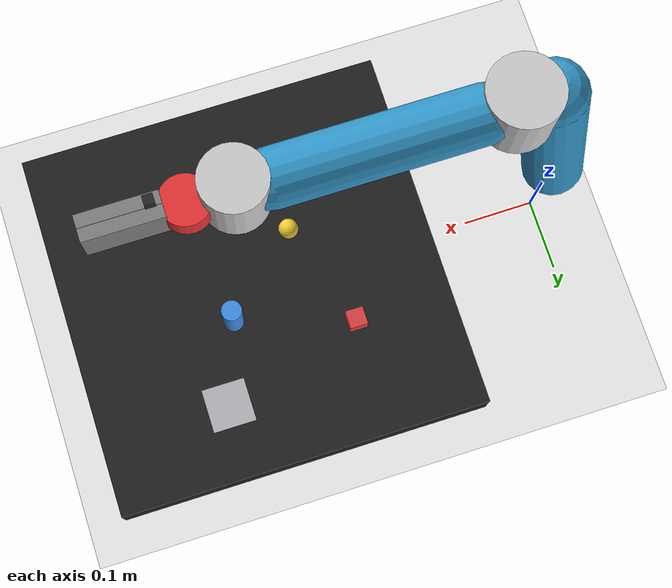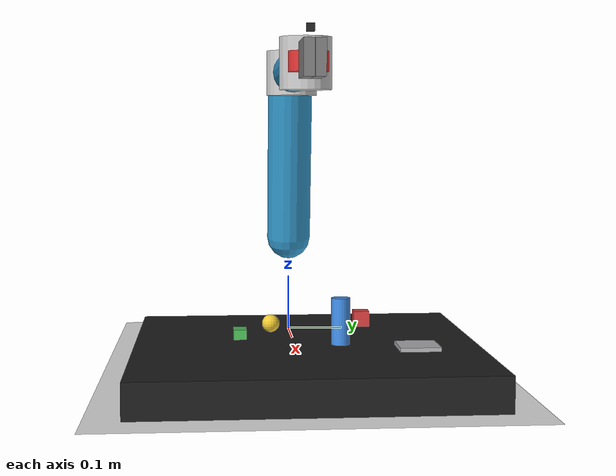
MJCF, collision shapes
<mujoco model="myarm_m750_vla_scene">
  <include file="myarm_m750_mujoco.xml"/>

  <worldbody>
    <body name="table" pos="0.42 0 0">
      <geom name="table_top" type="box" size="0.26 0.26 0.026" pos="0 0 0.026"
            rgba="0.12 0.12 0.12 1" density="300"/>
    </body>

    <!-- Khoi lap phuong 25 mm, 18.8 g -->
    <body name="obj_cube" pos="0.30 0.10 0.0685">
      <freejoint name="obj_cube_free"/>
      <geom name="obj_cube_g" type="box" size="0.0125 0.0125 0.0125"
            rgba="0.85 0.25 0.25 1" density="1200"/>
    </body>

    <!-- Hop det 30 x 20 x 15 mm, 10.8 g -->
    <body name="obj_box" pos="0.40 -0.10 0.0635">
      <freejoint name="obj_box_free"/>
      <geom name="obj_box_g" type="box" size="0.015 0.010 0.0075"
            rgba="0.30 0.75 0.35 1" density="1200"/>
    </body>

    <!-- Hinh tru dung 28 mm x 70 mm (kieu lon), 51.7 g -->
    <body name="obj_cyl" pos="0.46 0.05 0.091">
      <freejoint name="obj_cyl_free"/>
      <geom name="obj_cyl_g" type="cylinder" size="0.014 0.035"
            rgba="0.25 0.55 0.90 1" density="1200"/>
    </body>

    <!-- Cau 28 mm, 13.8 g -->
    <body name="obj_sphere" pos="0.35 -0.05 0.070">
      <freejoint name="obj_sphere_free"/>
      <geom name="obj_sphere_g" type="sphere" size="0.014"
            rgba="0.95 0.80 0.20 1" density="1200"/>
    </body>

    <!-- Tam phang 60 x 60 x 6 mm, 25.9 g. Rong hon khe kep toi da (69 mm nhung
         can cho de luon ngon vao) -> dung lam ca am: model VLA KHONG nen gap duoc. -->
    <body name="obj_plate" pos="0.50 0.16 0.059">
      <freejoint name="obj_plate_free"/>
      <geom name="obj_plate_g" type="box" size="0.030 0.030 0.003"
            rgba="0.70 0.70 0.72 1" density="1200"/>
    </body>

    <!-- Camera goc nhin thu ba, dat giong goc chup anh robot that (az270/el25/dist1.8
         nhin vao (0.35,0,0.10)) de doi chieu pose sim voi anh that. Body tinh, khong joint. -->
    <body name="view_cam_body" pos="0 0 0">
      <camera name="view_cam" pos="0.35 -1.6314 0.8607" quat="0.843391 0.5373 0 0" fovy="62"/>
    </body>
  </worldbody>
</mujoco>

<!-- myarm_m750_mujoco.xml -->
<mujoco model="myarm_m750_mujoco">
  <compiler angle="radian" coordinate="local" meshdir="meshes/mujoco/"/>
  <option gravity="0 0 -9.81" integrator="implicitfast"/>

  <visual>
    <headlight ambient="0.4 0.4 0.4" diffuse="0.8 0.8 0.8" specular="0.1 0.1 0.1"/>
    <rgba haze="0.15 0.25 0.35 1"/>
  </visual>

  <asset>
    <mesh name="base_mesh" file="base_link.obj"/>
    <mesh name="shoulder_mesh" file="shoulder_link.obj"/>
    <mesh name="upper_arm_mesh" file="upper_arm_link.obj"/>
    <mesh name="lower_arm_mesh" file="lower_arm_link.obj"/>
    <mesh name="forearm_mesh" file="forearm_link.obj"/>
    <mesh name="wrist_mesh" file="wrist_link.obj"/>
    <mesh name="gripper_base_mesh" file="gripper_base_link.obj"/>
    <mesh name="left_gripper_mesh" file="left_gripper_link.obj"/>
    <mesh name="right_gripper_mesh" file="right_gripper_link.obj"/>

    <material name="robot_metal" rgba="0.85 0.85 0.88 1.0" specular="0.5" shininess="0.8"/>
    <material name="robot_dark" rgba="0.2 0.2 0.22 1.0" specular="0.3" shininess="0.5"/>
    <material name="accent_blue" rgba="0.1 0.5 0.8 1.0" specular="0.4" shininess="0.6"/>
  </asset>

  <worldbody>
    <light diffuse=".6 .6 .6" pos="0 0 3" dir="0 0 -1"/>
    <geom name="ground" type="plane" size="1.5 1.5 0.1" rgba="0.92 0.92 0.92 1"/>

    <!-- Base Link -->
    <body name="base_link" pos="0 0 0">
      <inertial pos="0.025782267 0.00115366832 -0.0421035886" quat="0.574045613 -0.45023338 -0.569667693 0.378470946" mass="0.61013151" diaginertia="0.00132709133 0.00119563507 0.000979347747"/>
      <geom type="mesh" contype="0" conaffinity="0" mesh="base_mesh" material="robot_dark"/>
      <geom type="box" size="0.09 0.09 0.05" pos="0 0 0.05" rgba="0.2 0.2 0.2 0" group="1" contype="0" conaffinity="0"/>

      <!-- Joint 1: shoulder_pan_joint -->
      <body name="shoulder_link" pos="0 0 0.0979">
        <inertial pos="-0.000190260866 -0.000173020848 0.0526216698" quat="0.58767754 -0.533115935 -0.549510407 -0.261650187" mass="0.287756687" diaginertia="0.000913316549 0.0010109759 0.000519701575"/>
        <joint name="shoulder_pan_joint" type="hinge" axis="0 0 1" range="-2.8798 2.8798" damping="0.5"/>
        <geom type="mesh" contype="0" conaffinity="0" mesh="shoulder_mesh" material="robot_metal"/>
        <geom type="cylinder" size="0.07 0.035" pos="0 0 0.035" rgba="0.8 0.8 0.8 0" group="1" contype="0" conaffinity="0"/>

        <!-- Joint 2: shoulder_lift_joint -->
        <body name="upper_arm_link" pos="0 0 0.0760">
          <inertial pos="-0.00198242584 -0.220115856 -0.0106842016" quat="0.466994746 -0.36427418 0.70132715 -0.39668685" mass="0.163165528" diaginertia="0.000398656563 0.00166330159 0.00181192377"/>
          <joint name="shoulder_lift_joint" type="hinge" axis="0 1 0" range="-1.5708 1.5708" damping="0.5"/>
          <geom type="mesh" contype="0" conaffinity="0" mesh="upper_arm_mesh" material="robot_metal" quat="0.5 0.5 -0.5 0.5"/>
          <geom type="capsule" fromto="0 0 0 0.057 0 0.303" size="0.04" rgba="0.2 0.6 0.8 0" group="1"/>

          <!-- Joint 3: elbow_flex_joint -->
          <body name="lower_arm_link" pos="0.057 0 0.303">
            <inertial pos="0.0333461406 0.00264526068 2.96971138e-05" quat="-0.189133931 0.785079673 -0.549163192 -0.215169823" mass="0.0479433744" diaginertia="4.34298166e-05 3.87410347e-05 5.43154676e-05"/>
            <joint name="elbow_flex_joint" type="hinge" axis="0 1 0" range="-1.5708 1.5708" damping="0.5"/>
            <geom type="mesh" contype="0" conaffinity="0" mesh="lower_arm_mesh" material="robot_metal" quat="0.7071 -0.7071 0 0"/>
            <geom type="cylinder" size="0.045 0.0394" pos="0.0394 0 0" rgba="0.8 0.8 0.8 0" group="1"/>

            <!-- Joint 4: forearm_roll_joint -->
            <body name="forearm_link" pos="0.0788 0 0">
              <inertial pos="-0.143096176 0.000209714247 -3.71598329e-06" quat="0.793037341 -0.54170113 -0.115732874 -0.253490757" mass="0.100683751" diaginertia="0.000213902437 0.000505829858 0.00067746318"/>
              <joint name="forearm_roll_joint" type="hinge" axis="1 0 0" range="-2.7925 2.7925" damping="0.3"/>
              <geom type="mesh" contype="0" conaffinity="0" mesh="forearm_mesh" material="robot_metal" pos="-0.009 0 0" quat="0 0.7071 0 0.7071"/>
              <geom type="capsule" fromto="0 0 0 0.2491 0 0" size="0.035" rgba="0.2 0.6 0.8 0" group="1"/>

              <!-- Joint 5: wrist_flex_joint -->
              <body name="wrist_link" pos="0.24911 0 0">
                <inertial pos="0.0415975981 0.000291403377 0.0068317999" quat="0.127903853 0.841139428 -0.517056588 0.0936885914" mass="0.0560195844" diaginertia="3.21975442e-05 3.9030814e-05 3.90009601e-05"/>
                <joint name="wrist_flex_joint" type="hinge" axis="0 1 0" range="-1.5708 2.0944" damping="0.3"/>
                <geom type="mesh" contype="0" conaffinity="0" mesh="wrist_mesh" material="robot_metal" quat="0.7071 -0.7071 0 0"/>
                <geom type="cylinder" size="0.04 0.0395" pos="0.0395 0 0" rgba="0.8 0.8 0.8 0" group="1"/>

                <!-- Joint 6: wrist_roll_joint -->
                <body name="flange_link" pos="0.0790 0 0">
                  <joint name="wrist_roll_joint" type="hinge" axis="1 0 0" range="-3.1416 3.1416" damping="0.2"/>
                  <geom type="cylinder" size="0.03 0.015" pos="0.015 0 0" rgba="0.9 0.2 0.2 0" group="1"/>

                  <site name="tool0_preview" type="sphere" pos="0.118 0 0" size="0.012" rgba="0.95 0.25 0.15 0"/>

                  <!-- Gripper Base -->
                  <body name="gripper_base_link" pos="0.0310 0 0" euler="0 1.5708 0">
                    <inertial pos="-0.00707897146 -0.00225276271 -0.0184197569" quat="-0.12051804 -0.063500073 0.94613906 0.293707374" mass="0.0646011729" diaginertia="0.000106200161 6.0359128e-05 9.43675594e-05"/>
                    <geom type="mesh" contype="0" conaffinity="0" mesh="gripper_base_mesh" material="robot_dark" pos="0 0 -0.0427"/>

                    <camera name="wrist_cam" pos="-0.04650 0 0.02069" quat="0 0.7071068 -0.7071068 0" fovy="70"/>
                    <geom name="wrist_cam_body" type="box" size="0.006 0.006 0.006" pos="-0.04650 0 0.02069" rgba="0.15 0.15 0.15 1" contype="0" conaffinity="0"/>

                    <!-- Left Gripper Finger -->
                    <body name="left_gripper_link" pos="0 0.0080 0" euler="1.5708 0 -3.1416">
                      <inertial pos="1.50589618e-07 -0.0510389493 -0.000802093096" quat="0.657896402 0.455421127 -0.558029022 -0.219926197" mass="0.0266468367" diaginertia="9.15258013e-06 1.16595007e-05 8.86948242e-06"/>
                      <joint name="left_gripper_joint" type="slide" axis="0 0 -1" range="0 0.0345" damping="0.1"/>
                      <geom type="mesh" contype="0" conaffinity="0" mesh="left_gripper_mesh" material="accent_blue" pos="0 -0.0079 0" quat="0 0.7071 0.7071 0"/>
                      <geom name="left_finger_col" type="box" size="0.0263 0.0472 0.0078" pos="0 -0.0553 0" friction="1.5 0.005 0.0001"/>
                    </body>

                    <!-- Right Gripper Finger -->
                    <body name="right_gripper_link" pos="0 -0.0080 0" euler="1.5708 0 -3.1416">
                      <inertial pos="1.53721125e-07 -0.0500759815 0.00052550417" quat="-0.283258813 0.212082313 -0.226507385 0.907457956" mass="0.0257037087" diaginertia="7.81818735e-06 8.86956669e-06 1.14185492e-05"/>
                      <joint name="right_gripper_joint" type="slide" axis="0 0 1" range="0 0.0345" damping="0.1"/>
                      <geom type="mesh" contype="0" conaffinity="0" mesh="right_gripper_mesh" material="accent_blue" pos="0 -0.0079 0" quat="0 0.7071 0.7071 0"/>
                      <geom name="right_finger_col" type="box" size="0.0263 0.0472 0.0078" pos="0 -0.0553 0" friction="1.5 0.005 0.0001"/>
                    </body>
                  </body>
                </body>
              </body>
            </body>
          </body>
        </body>
      </body>
    </body>
  </worldbody>

  <actuator>
    <position name="pos_j1" joint="shoulder_pan_joint" kp="100" kv="10" ctrlrange="-2.8798 2.8798"/>
    <position name="pos_j2" joint="shoulder_lift_joint" kp="150" kv="15" ctrlrange="-1.5708 1.5708"/>
    <position name="pos_j3" joint="elbow_flex_joint" kp="100" kv="10" ctrlrange="-1.5708 1.5708"/>
    <position name="pos_j4" joint="forearm_roll_joint" kp="50" kv="5" ctrlrange="-2.7925 2.7925"/>
    <position name="pos_j5" joint="wrist_flex_joint" kp="40" kv="4" ctrlrange="-1.5708 2.0944"/>
    <position name="pos_j6" joint="wrist_roll_joint" kp="30" kv="3" ctrlrange="-3.1416 3.1416"/>
    <position name="pos_left_gripper" joint="left_gripper_joint" kp="200" kv="20" ctrlrange="0 0.0345"/>
  </actuator>

  <equality>
    <joint joint1="left_gripper_joint" joint2="right_gripper_joint"
           polycoef="0 1 0 0 0" solimp="0.999 0.9999 0.0001"/>
  </equality>
</mujoco>
